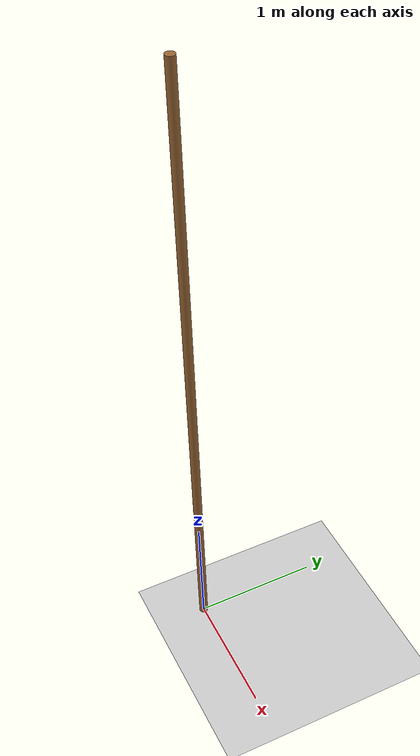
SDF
<?xml version="1.0" ?>

<sdf version="1.6">
  <world name="cylinder_climb">

    <!-- Disable gravity -->
    <gravity>0 0 0</gravity>

    <!-- Plugin for simulating physics -->
    <plugin
      filename="gz-sim-physics-system"
      name="gz::sim::systems::Physics">
    </plugin>

    <!-- Plugin for handling user commands -->
    <plugin
      filename="gz-sim-user-commands-system"
      name="gz::sim::systems::UserCommands">
    </plugin>

    <!-- Plugin for broadcasting scene updates -->
    <plugin
      filename="gz-sim-scene-broadcaster-system"
      name="gz::sim::systems::SceneBroadcaster">
    </plugin>

    <!-- Plugin for handling sensors -->
    <plugin
      filename="gz-sim-sensors-system"
      name="gz::sim::systems::Sensors">
      <render_engine>ogre2</render_engine>
    </plugin>

    <!-- Plugin for IMU -->
    <plugin filename="gz-sim-imu-system"
      name="gz::sim::systems::Imu">
    </plugin>

    <light type="directional" name="sun">
      <cast_shadows>true</cast_shadows>
      <pose>0 0 10 0 0 0</pose>
      <diffuse>1 1 1 1</diffuse>
      <specular>0.5 0.5 0.5 1</specular>
      <attenuation>
        <range>1000</range>
        <constant>0.9</constant>
        <linear>0.01</linear>
        <quadratic>0.001</quadratic>
      </attenuation>
      <direction>-0.5 0.1 -0.9</direction>
    </light>

    <!-- Ground plane -->
    <model name="ground_plane">
      <static>true</static>
      <link name="link">
        <collision name="collision">
          <geometry>
            <plane>
              <normal>0 0 1</normal>
              <size>100 100</size>
            </plane>
          </geometry>
          <surface>
            <friction>
              <ode>
                <mu>0.5</mu>
                <mu2>0.5</mu2>
              </ode>
            </friction>
          </surface>
        </collision>
        <visual name="visual">
          <geometry>
            <plane>
              <normal>0 0 1</normal>
              <size>100 100</size>
            </plane>
          </geometry>
          <material>
            <ambient>0.8 0.8 0.8 1</ambient>
            <diffuse>0.8 0.8 0.8 1</diffuse>
            <specular>0.8 0.8 0.8 1</specular>
          </material>
        </visual>
      </link>
    </model>

    <!-- The cylinder pole to climb -->
    <!-- 15cm diameter (0.075 radius), 5m tall, centered at origin -->
    <model name="climbing_pole">
      <static>true</static>
      <pose>0 0 2.5 0 0 0</pose>
      <link name="pole_link">
        <collision name="collision">
          <geometry>
            <cylinder>
              <radius>0.035</radius>
              <length>5.0</length>
            </cylinder>
          </geometry>
          <surface>
            <friction>
              <ode>
                <mu>1.0</mu>
                <mu2>1.0</mu2>
              </ode>
            </friction>
          </surface>
        </collision>
        <visual name="visual">
          <geometry>
            <cylinder>
              <radius>0.035</radius>
              <length>5.0</length>
            </cylinder>
          </geometry>
          <material>
            <ambient>0.6 0.4 0.2 1</ambient>
            <diffuse>0.6 0.4 0.2 1</diffuse>
            <specular>0.3 0.2 0.1 1</specular>
          </material>
        </visual>
      </link>
    </model>

  </world>
</sdf>
